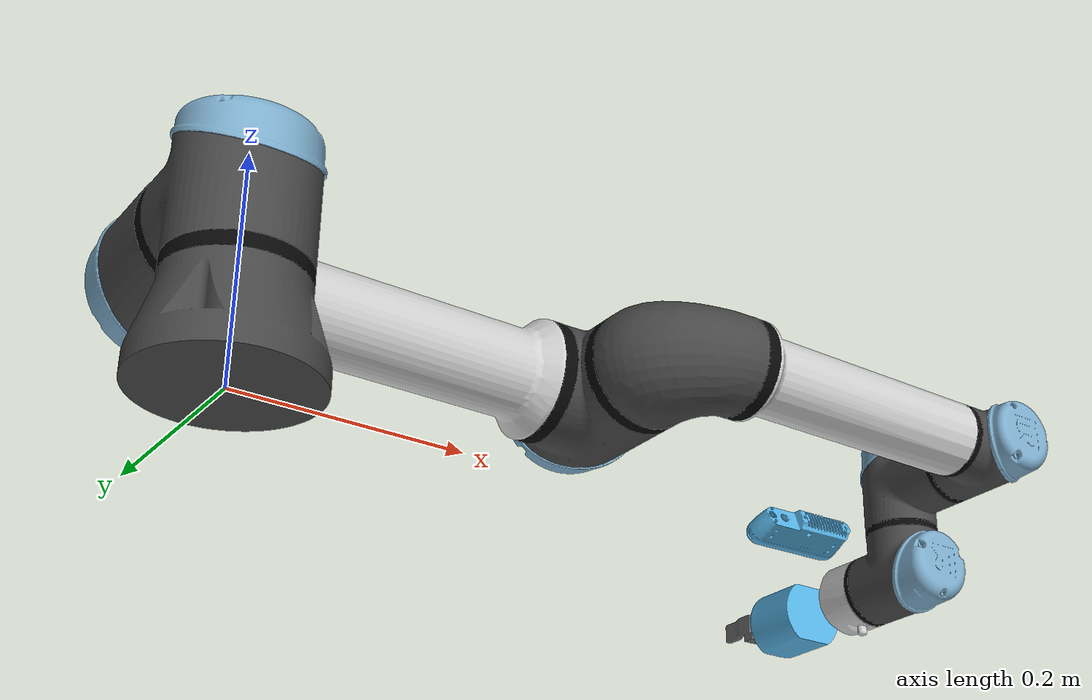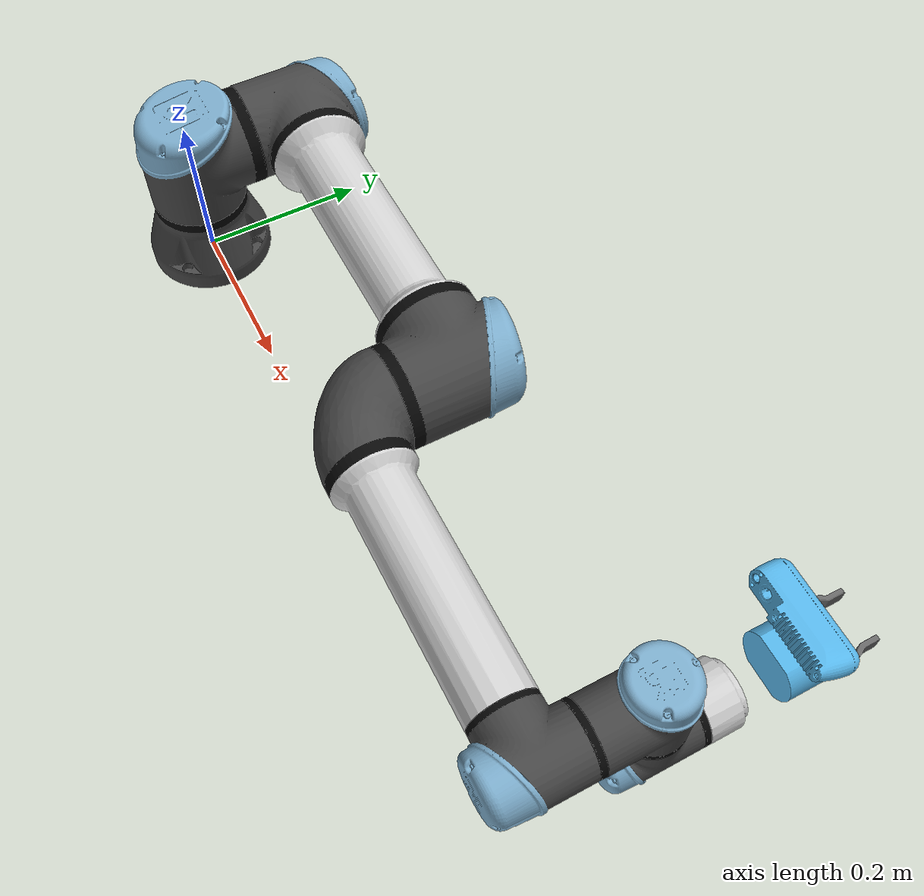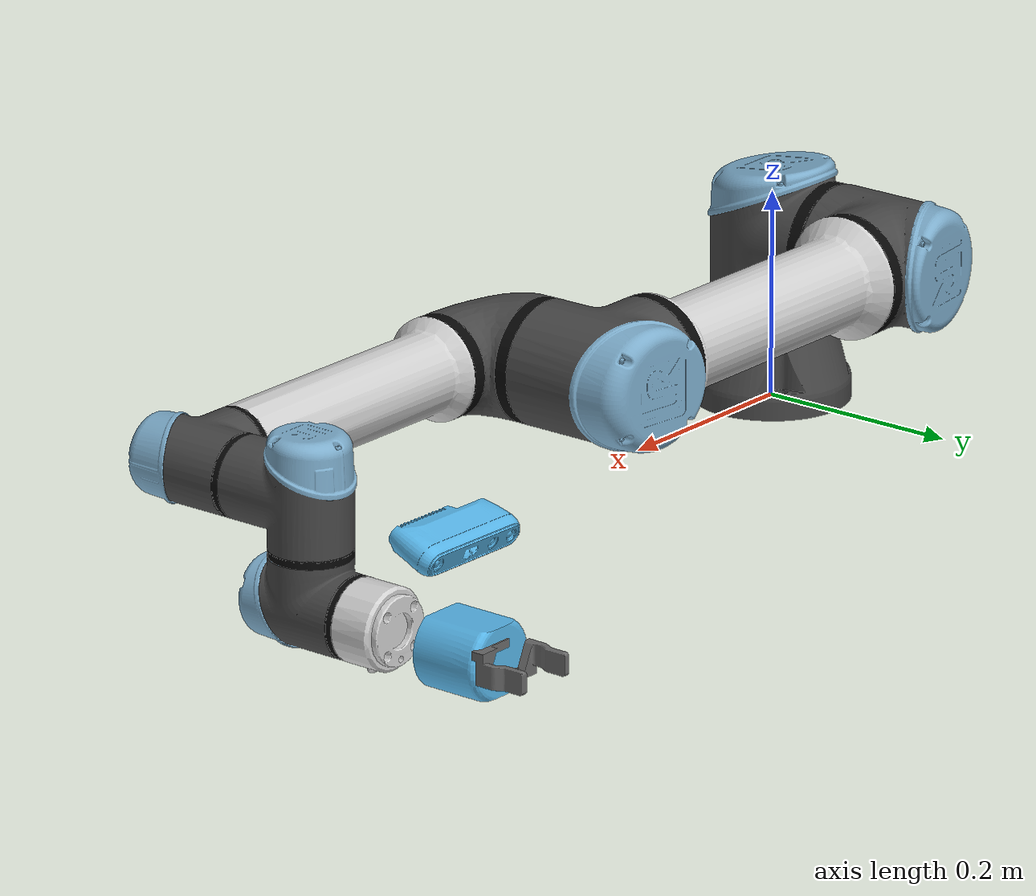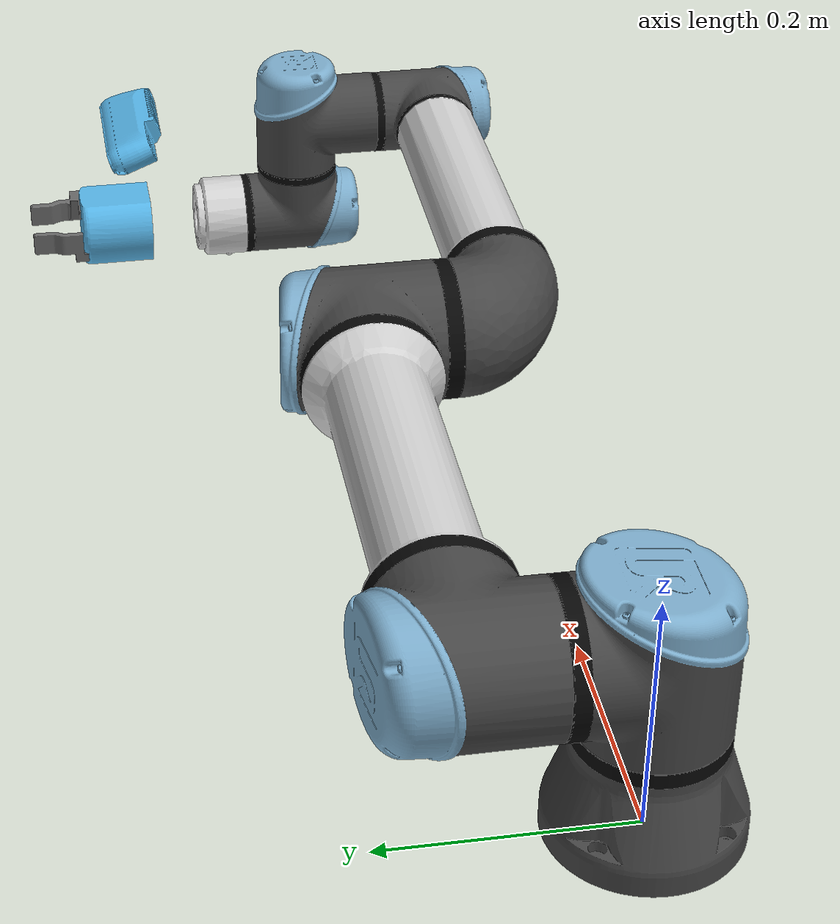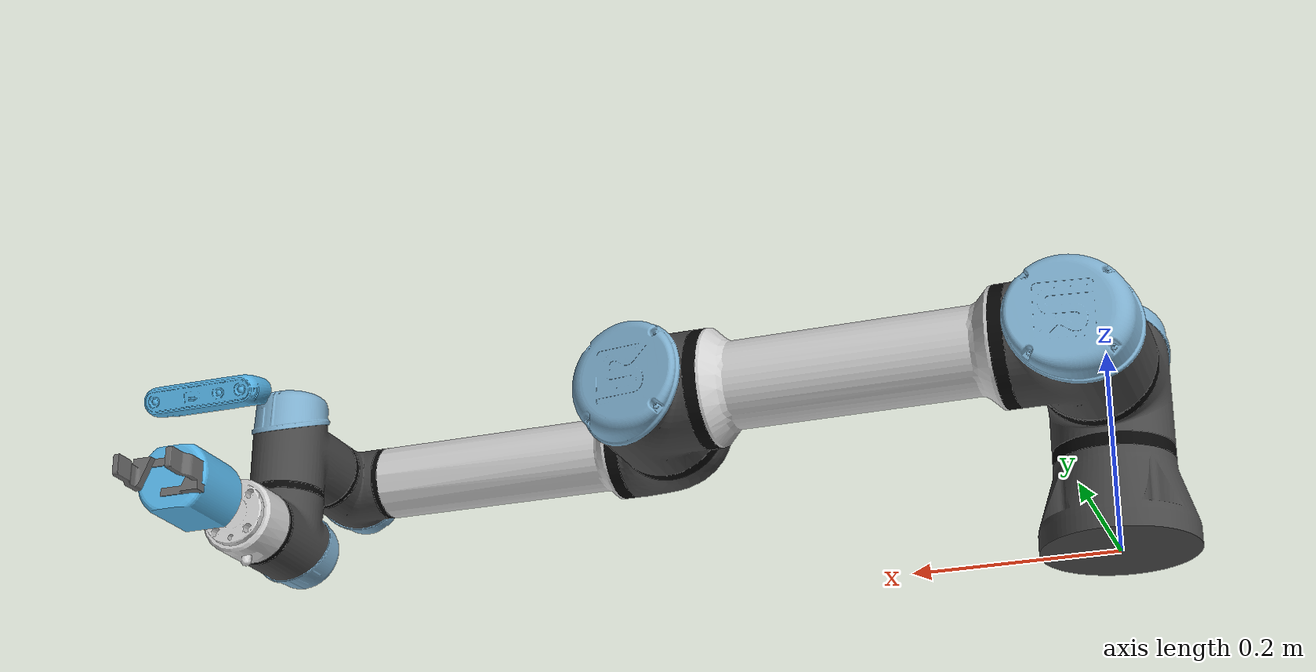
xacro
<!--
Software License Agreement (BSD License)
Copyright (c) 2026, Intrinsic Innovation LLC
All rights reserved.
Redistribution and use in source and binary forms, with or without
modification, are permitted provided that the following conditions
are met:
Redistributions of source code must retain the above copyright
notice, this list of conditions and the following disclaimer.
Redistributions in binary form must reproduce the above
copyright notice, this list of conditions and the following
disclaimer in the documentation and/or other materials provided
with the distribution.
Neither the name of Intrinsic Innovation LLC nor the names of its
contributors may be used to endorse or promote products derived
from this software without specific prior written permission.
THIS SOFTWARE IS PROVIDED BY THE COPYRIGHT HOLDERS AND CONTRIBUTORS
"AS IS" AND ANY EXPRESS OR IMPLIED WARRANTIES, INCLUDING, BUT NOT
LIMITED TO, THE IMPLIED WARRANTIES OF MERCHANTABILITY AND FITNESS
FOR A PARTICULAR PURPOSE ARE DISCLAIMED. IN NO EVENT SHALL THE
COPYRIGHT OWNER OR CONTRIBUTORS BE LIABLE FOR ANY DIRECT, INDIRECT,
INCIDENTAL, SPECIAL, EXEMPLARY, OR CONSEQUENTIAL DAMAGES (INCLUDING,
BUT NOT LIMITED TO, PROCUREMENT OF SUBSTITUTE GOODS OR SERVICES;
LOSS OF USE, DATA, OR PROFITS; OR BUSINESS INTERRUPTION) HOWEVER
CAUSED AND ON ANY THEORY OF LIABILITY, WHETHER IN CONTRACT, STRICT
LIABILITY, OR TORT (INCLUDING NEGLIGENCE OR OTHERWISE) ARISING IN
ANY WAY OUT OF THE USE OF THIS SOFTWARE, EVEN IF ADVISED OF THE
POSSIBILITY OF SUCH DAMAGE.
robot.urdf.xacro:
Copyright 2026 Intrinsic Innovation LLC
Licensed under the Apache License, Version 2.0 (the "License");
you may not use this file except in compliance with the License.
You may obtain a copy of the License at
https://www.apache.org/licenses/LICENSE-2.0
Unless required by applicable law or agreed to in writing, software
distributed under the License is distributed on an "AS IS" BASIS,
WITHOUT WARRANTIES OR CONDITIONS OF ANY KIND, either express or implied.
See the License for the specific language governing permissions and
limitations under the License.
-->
<?xml version="1.0"?>

<robot xmlns:xacro="http://www.ros.org/wiki/xacro" name="robot_hardware">
    <xacro:arg name="initial_positions_file" default="initial_positions.yaml" />

    <!-- Import robot_hardware urdf file -->
    <xacro:include filename="$(find robot_hardware_description)/urdf/robot.urdf.xacro" />

    <!-- Import control_xacro -->
    <xacro:include filename="robot_hardware.ros2_control.xacro" />

    <xacro:robot_hardware_ros2_control name="FakeSystem" initial_positions_file="$(arg initial_positions_file)"/>

</robot>

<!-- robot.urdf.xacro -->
<robot
  name="robot_hardware"
  xmlns:xacro="http://wiki.ros.org/xacro">

  <!-- Vendored Intrinsic UR5e description macro -->
  <xacro:include
    filename="$(find robot_hardware_description)/urdf/ur5e/ur5e_macro.xacro"/>

  <!-- Local hardware components -->
  <xacro:include
    filename="$(find robot_hardware_description)/urdf/robotiq_hande/robotiq_hande_macro.xacro"/>

  <xacro:include
    filename="$(find robot_hardware_description)/urdf/orbbec_gemini_335le/orbbec_gemini_335le_macro.xacro"/>

  <!-- UR5e Arm -->
  <xacro:ur5e_robot
    name="ur5e"
    tf_prefix=""
    parent="">
    <origin xyz="0 0 0" rpy="0 0 0"/>
  </xacro:ur5e_robot>

  <!-- Robotiq Hand-E, adding 1mm additional opening to grasp 50mm objects -->
  <!-- This has been reflected in third_party/robot_hardware_moveit_config/config/robot_hardware.srdf as well -->
  <xacro:robotiq_hande
    name="robotiq_hande"
    tf_prefix="hande_"
    grip_pos_min="-0.001"
    grip_pos_max="0.025"
    grip_vel_max="0.05"
    grip_effort_min="20"
    grip_effort_max="130"
    initial_pos="0.00655"
    use_ros2_control="false"/>

  <!-- Orbbec Gemini 335Le Camera -->
  <xacro:orbbec_gemini_335le
    name="orbbec_camera"
    tf_prefix="orbbec_camera_"/>

  <!-- UR5e flange -> Hand-E -->
  <joint name="flange_to_hande" type="fixed">
    <origin xyz="0 0 0" rpy="0 0 0"/>
    <parent link="flange"/>
    <child link="hande_hande_base_link"/>
  </joint>

  <!-- UR5e flange -> Camera -->
  <joint name="flange_to_orbbec_camera" type="fixed">
    <origin xyz="0.025379 0.093008 0.077824" rpy="-0.35550899 0.00730122 3.13241238"/>
    <parent link="flange"/>
    <child link="orbbec_camera_link"/>
  </joint>

</robot>

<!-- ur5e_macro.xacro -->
<robot xmlns:xacro="http://wiki.ros.org/xacro">
  <xacro:macro name="ur5e_robot" params="name tf_prefix parent *origin">

    <!-- Base link -->
    <link name="${tf_prefix}base_link">
      <visual>
        <origin rpy="0 0 3.14159265359" xyz="0 0 0"/>
        <geometry>
          <mesh filename="package://robot_hardware_description/urdf/ur5e/visual/base.dae"/>
        </geometry>
      </visual>
      <collision>
        <origin rpy="0 0 3.14159265359" xyz="0 0 0.01"/>
        <geometry>
          <mesh filename="package://robot_hardware_description/urdf/ur5e/collision/base.stl"/>
        </geometry>
      </collision>
      <inertial>
        <mass value="4.0"/>
        <origin rpy="0 0 0" xyz="0.0 0.0 0.0"/>
        <inertia ixx=".01" ixy="0" ixz="0" iyy=".01" iyz="0" izz=".01"/>
      </inertial>
    </link>

    <!-- Base joint connecting to parent link -->
    <xacro:if value="${parent != ''}">
      <joint name="${tf_prefix}base_joint" type="fixed">
        <xacro:insert_block name="origin" />
        <parent link="${parent}" />
        <child link="${tf_prefix}base_link" />
      </joint>
    </xacro:if>

    <!-- Shoulder pan joint -->
    <joint name="${tf_prefix}shoulder_pan_joint" type="revolute">
      <parent link="${tf_prefix}base_link"/>
      <child link="${tf_prefix}shoulder_link"/>
      <origin rpy="0 0 0" xyz="0 0 0.1625"/>
      <axis xyz="0 0 1"/>
      <limit effort="150.0" lower="-6.2831853" upper="6.2831853" velocity="3.1415927"/>
    </joint>

    <link name="${tf_prefix}shoulder_link">
      <visual>
        <origin rpy="0 0 0" xyz="0 0 0"/>
        <geometry>
          <mesh filename="package://robot_hardware_description/urdf/ur5e/visual/shoulder.dae"/>
        </geometry>
      </visual>
      <collision>
        <origin rpy="0 0 0" xyz="0 0 0"/>
        <geometry>
          <mesh filename="package://robot_hardware_description/urdf/ur5e/collision/shoulder.wrapped.1cm.stl"/>
        </geometry>
      </collision>
      <inertial>
        <mass value="3.761"/>
        <origin rpy="0 0 0" xyz="0.0 0.0 0.0"/>
        <inertia ixx=".01" ixy="0" ixz="0" iyy=".01" iyz="0" izz=".01"/>
      </inertial>
    </link>

    <!-- Shoulder lift joint -->
    <joint name="${tf_prefix}shoulder_lift_joint" type="revolute">
      <parent link="${tf_prefix}shoulder_link"/>
      <child link="${tf_prefix}upper_arm_link"/>
      <origin rpy="0 0 0" xyz="0 0 0"/>
      <axis xyz="0 1 0"/>
      <limit effort="150.0" lower="-4.1" upper="0.96" velocity="3.1415927"/>
    </joint>

    <link name="${tf_prefix}upper_arm_link">
      <visual>
        <origin rpy="0 1.57079632679 0" xyz="0 0.138 0"/>
        <geometry>
          <mesh filename="package://robot_hardware_description/urdf/ur5e/visual/upperarm.dae"/>
        </geometry>
      </visual>
      <collision>
        <origin rpy="0 1.57079632679 0" xyz="0 0.138 0"/>
        <geometry>
          <mesh filename="package://robot_hardware_description/urdf/ur5e/collision/upperarm.wrapped.1cm.stl"/>
        </geometry>
      </collision>
      <inertial>
        <mass value="8.058"/>
        <origin rpy="0 0 0" xyz="0.0 0.0 0.28"/>
        <inertia ixx=".01" ixy="0" ixz="0" iyy=".01" iyz="0" izz=".01"/>
      </inertial>
    </link>

    <!-- Elbow joint -->
    <joint name="${tf_prefix}elbow_joint" type="revolute">
      <parent link="${tf_prefix}upper_arm_link"/>
      <child link="${tf_prefix}forearm_link"/>
      <origin rpy="0 0 0" xyz="0.425 0 0"/>
      <axis xyz="0 1 0"/>
      <limit effort="150.0" lower="-2.8" upper="2.8" velocity="3.1415927"/>
    </joint>

    <link name="${tf_prefix}forearm_link">
      <visual>
        <origin rpy="0 1.57079632679 0" xyz="0 0.007 0"/>
        <geometry>
          <mesh filename="package://robot_hardware_description/urdf/ur5e/visual/forearm.dae"/>
        </geometry>
      </visual>
      <collision>
        <origin rpy="0 1.57079632679 0" xyz="0 0.007 0"/>
        <geometry>
          <mesh filename="package://robot_hardware_description/urdf/ur5e/collision/forearm.wrapped.1cm.stl"/>
        </geometry>
      </collision>
      <inertial>
        <mass value="2.846"/>
        <origin rpy="0 0 0" xyz="0.0 0.0 0.25"/>
        <inertia ixx=".01" ixy="0" ixz="0" iyy=".01" iyz="0" izz=".01"/>
      </inertial>
    </link>

    <!-- Wrist 1 joint -->
    <joint name="${tf_prefix}wrist_1_joint" type="revolute">
      <parent link="${tf_prefix}forearm_link"/>
      <child link="${tf_prefix}wrist_1_link"/>
      <origin rpy="0 0 0" xyz="0.3922 0 0"/>
      <axis xyz="0 1 0"/>
      <limit effort="28.0" lower="-6.2831853" upper="6.2831853" velocity="3.1415927"/>
    </joint>

    <link name="${tf_prefix}wrist_1_link">
      <visual>
        <origin rpy="0 3.14159265359 0" xyz="0 0.007 0"/>
        <geometry>
          <mesh filename="package://robot_hardware_description/urdf/ur5e/visual/wrist1.dae"/>
        </geometry>
      </visual>
      <collision>
        <origin rpy="0 3.14159265359 0" xyz="0 0.007 0"/>
        <geometry>
          <mesh filename="package://robot_hardware_description/urdf/ur5e/collision/wrist1.wrapped.1cm.stl"/>
        </geometry>
      </collision>
      <inertial>
        <mass value="1.37"/>
        <origin rpy="0 0 0" xyz="0.0 0.0 0.0"/>
        <inertia ixx=".01" ixy="0" ixz="0" iyy=".01" iyz="0" izz=".01"/>
      </inertial>
    </link>

    <!-- Wrist 2 joint -->
    <joint name="${tf_prefix}wrist_2_joint" type="revolute">
      <parent link="${tf_prefix}wrist_1_link"/>
      <child link="${tf_prefix}wrist_2_link"/>
      <origin rpy="0 0 0" xyz="0 0.1333 -0.0997"/>
      <axis xyz="0 0 -1"/>
      <limit effort="28.0" lower="-6.2831853" upper="6.2831853" velocity="3.1415927"/>
    </joint>

    <link name="${tf_prefix}wrist_2_link">
      <visual>
        <origin rpy="0 3.14159265359 0" xyz="0 0 0.0997"/>
        <geometry>
          <mesh filename="package://robot_hardware_description/urdf/ur5e/visual/wrist2.dae"/>
        </geometry>
      </visual>
      <collision>
        <origin rpy="0 3.14159265359 0" xyz="0 0 0.0997"/>
        <geometry>
          <mesh filename="package://robot_hardware_description/urdf/ur5e/collision/wrist2.wrapped.1cm.stl"/>
        </geometry>
      </collision>
      <inertial>
        <mass value="1.3"/>
        <origin rpy="0 0 0" xyz="0 0 0"/>
        <inertia ixx=".01" ixy="0" ixz="0" iyy=".01" iyz="0" izz=".01"/>
      </inertial>
    </link>

    <!-- Wrist 3 joint -->
    <joint name="${tf_prefix}wrist_3_joint" type="revolute">
      <parent link="${tf_prefix}wrist_2_link"/>
      <child link="${tf_prefix}wrist_3_link"/>
      <origin rpy="-1.57079632679 3.14159265359 0" xyz="0.0 0.0996 0"/>
      <axis xyz="0 0 1"/>
      <limit effort="28.0" lower="-6.2831853" upper="6.2831853" velocity="3.1415927"/>
    </joint>

    <link name="${tf_prefix}wrist_3_link">
      <visual>
        <origin rpy="1.57079632679 0 0" xyz="0 -0.0005 -0.0996"/>
        <geometry>
          <mesh filename="package://robot_hardware_description/urdf/ur5e/visual/wrist3.dae"/>
        </geometry>
      </visual>
      <collision>
        <origin rpy="1.57079632679 0 0" xyz="0 -0.0005 -0.0996"/>
        <geometry>
          <mesh filename="package://robot_hardware_description/urdf/ur5e/collision/wrist3.wrapped.1cm.stl"/>
        </geometry>
      </collision>
      <inertial>
        <mass value="0.365"/>
        <origin rpy="0 0 0" xyz="0.0 0.0 0.0"/>
        <inertia ixx=".01" ixy="0" ixz="0" iyy=".01" iyz="0" izz=".01"/>
      </inertial>
    </link>

    <!-- Terminal Frame Aliases (flange & tool0) -->
    <link name="${tf_prefix}flange"/>
    <joint name="${tf_prefix}wrist_3_link-flange" type="fixed">
      <parent link="${tf_prefix}wrist_3_link"/>
      <child link="${tf_prefix}flange"/>
      <origin rpy="0 0 0" xyz="0 0 0"/>
    </joint>

    <link name="${tf_prefix}tool0"/>
    <joint name="${tf_prefix}flange-tool0" type="fixed">
      <parent link="${tf_prefix}flange"/>
      <child link="${tf_prefix}tool0"/>
      <origin rpy="0 0 0" xyz="0 0 0"/>
    </joint>

  </xacro:macro>
</robot>

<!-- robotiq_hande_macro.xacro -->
<robot xmlns:xacro="http://wiki.ros.org/xacro">

  <xacro:include filename="$(find robot_hardware_description)/urdf/robotiq_hande/robotiq_hande.ros2_control.xacro"/>

  <xacro:macro name="robotiq_hande" params="name tf_prefix grip_pos_min grip_pos_max grip_vel_max grip_effort_min grip_effort_max initial_pos use_ros2_control:=false">

    <xacro:if value="${use_ros2_control}">
      <xacro:robotiq_hande_ros2_control
        name="${name}"
        tf_prefix="${tf_prefix}"
        grip_pos_min="${grip_pos_min}"
        grip_pos_max="${grip_pos_max}"
        grip_effort_min="${grip_effort_min}"
        grip_effort_max="${grip_effort_max}"
        initial_pos="${initial_pos}"
      />
    </xacro:if>

    <!-- Base of the gripper -->
    <link name="${tf_prefix}hande_base_link">
      <inertial>
        <origin xyz="0 0 0" rpy="0 0 0"/>
        <mass value="1.0"/>
        <inertia ixx="0.1" ixy="0.0" ixz="0.0"
                 iyy="0.1" iyz="0.0"
                 izz="0.1"/>
      </inertial>

      <visual name="visual1">
        <origin xyz="0 0 0" rpy="0 0 0"/>
        <geometry>
          <mesh filename="package://robot_hardware_description/meshes/robotiq_hande/robotiq_hande_body.dae"/>
        </geometry>
      </visual>

      <collision name="collision1">
        <origin xyz="0 0 0" rpy="0 0 0"/>
        <geometry>
          <mesh filename="package://robot_hardware_description/meshes/robotiq_hande/robotiq_hande_body_c01.stl"/>
        </geometry>
      </collision>

      <collision name="collision2">
        <origin xyz="0 0 0" rpy="0 0 0"/>
        <geometry>
          <mesh filename="package://robot_hardware_description/meshes/robotiq_hande/robotiq_hande_body_c02.stl"/>
        </geometry>
      </collision>
    </link>

    <!-- Fingers and their prismatic joints -->
    <link name="${tf_prefix}hande_finger_link_l">
      <inertial>
        <origin xyz="0 0 0" rpy="0 0 0"/>
        <mass value="0.2"/>
        <inertia ixx="0.0001" ixy="0.0" ixz="0.0"
                 iyy="0.00009" iyz="0.0"
                 izz="0.00003"/>
      </inertial>

      <visual name="visual1">
        <origin xyz="0 0 0" rpy="0 0 0"/>
        <geometry>
          <mesh filename="package://robot_hardware_description/meshes/robotiq_hande/robotiq_hande_finger.dae"/>
        </geometry>
      </visual>

      <collision name="collision1">
        <origin xyz="0.028 0 0.15" rpy="0 0 0"/>
        <geometry>
          <sphere radius="0.003"/>
        </geometry>
      </collision>

      <collision name="collision2">
        <origin xyz="0.033 0 0.127" rpy="0 0 0"/>
        <geometry>
          <box size="0.005 0.02 0.02"/>
        </geometry>
      </collision>
    </link>

    <link name="${tf_prefix}hande_finger_link_r">
      <inertial>
        <origin xyz="0 0 0" rpy="0 0 0"/>
        <mass value="0.2"/>
        <inertia ixx="0.0001" ixy="0.0" ixz="0.0"
                 iyy="0.00009" iyz="0.0"
                 izz="0.00003"/>
      </inertial>

      <visual name="visual1">
        <origin xyz="0 0 0" rpy="0 0 3.14157"/>
        <geometry>
          <mesh filename="package://robot_hardware_description/meshes/robotiq_hande/robotiq_hande_finger.dae"/>
        </geometry>
      </visual>

      <collision name="collision1">
        <origin xyz="-0.028 0 0.15" rpy="0 0 0"/>
        <geometry>
          <sphere radius="0.003"/>
        </geometry>
      </collision>

      <collision name="collision2">
        <origin xyz="-0.033 0 0.127" rpy="0 0 0"/>
        <geometry>
          <box size="0.005 0.02 0.02"/>
        </geometry>
      </collision>
    </link>

    <joint name="${tf_prefix}left_finger_joint" type="prismatic">
      <origin xyz="0 0 0" rpy="0 0 0"/>
      <parent link="${tf_prefix}hande_base_link"/>
      <child link="${tf_prefix}hande_finger_link_l"/>
      <axis xyz="-1 0 0"/>
      <limit effort="${grip_effort_max}" lower="${grip_pos_min}" upper="${grip_pos_max}" velocity="${grip_vel_max}"/>
    </joint>

    <joint name="${tf_prefix}right_finger_joint" type="prismatic">
      <origin xyz="0 0 0" rpy="0 0 0"/>
      <parent link="${tf_prefix}hande_base_link"/>
      <child link="${tf_prefix}hande_finger_link_r"/>
      <axis xyz="1 0 0"/>
      <limit effort="${grip_effort_max}" lower="${grip_pos_min}" upper="${grip_pos_max}" velocity="${grip_vel_max}"/>
      <mimic joint="${tf_prefix}left_finger_joint" multiplier="1" offset="0"/>
    </joint>

    <!-- Tool Center Point (TCP) and Tool Frame conventions -->
    <link name="${tf_prefix}tcp"/>

    <joint name="${tf_prefix}attach_tool_frame" type="fixed">
    <!-- NOTE(aaronchongth): decreased z-offset from 0.172 to 0.14 because of constant collisions with scene objects -->
      <origin xyz="0 0 0.14" rpy="0 0 0"/>
      <parent link="${tf_prefix}hande_base_link"/>
      <child link="${tf_prefix}tcp"/>
    </joint>

    <!-- Alias link for Intrinsic Core prefixed tool_frame convention -->
    <link name="${tf_prefix}tool_frame"/>
    <joint name="${tf_prefix}tcp_to_prefixed_tool_frame" type="fixed">
      <origin xyz="0 0 0" rpy="0 0 0"/>
      <parent link="${tf_prefix}tcp"/>
      <child link="${tf_prefix}tool_frame"/>
    </joint>

    <!-- Alias link for Intrinsic Core unqualified tool_frame convention -->
    <link name="tool_frame"/>
    <joint name="${tf_prefix}tcp_to_tool_frame" type="fixed">
      <origin xyz="0 0 0" rpy="0 0 0"/>
      <parent link="${tf_prefix}tcp"/>
      <child link="tool_frame"/>
    </joint>

    <!-- Alias link for Intrinsic Core gripper base convention -->
    <link name="gripper_base_link"/>
    <joint name="${tf_prefix}base_to_gripper_base_link" type="fixed">
      <origin xyz="0 0 0" rpy="0 0 0"/>
      <parent link="${tf_prefix}hande_base_link"/>
      <child link="gripper_base_link"/>
    </joint>

  </xacro:macro>
</robot>

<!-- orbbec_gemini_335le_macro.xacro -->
<robot xmlns:xacro="http://wiki.ros.org/xacro">

  <!--
    Orbbec Gemini 335Le Camera Macro
    Derived directly from orbbec_gemini_335le.sdf
  -->
  <xacro:macro name="orbbec_gemini_335le" params="name:=camera tf_prefix:=camera_">

    <link name="${tf_prefix}link"/>

    <link name="${tf_prefix}mesh_frame">
      <visual name="visual">
        <origin xyz="0 0 0" rpy="0 0 0"/>
        <geometry>
          <mesh filename="package://robot_hardware_description/meshes/orbbec_gemini_335le/orbbec_gemini_335le_visual.obj"/>
        </geometry>
      </visual>
    </link>

    <joint name="${tf_prefix}color_to_mesh" type="fixed">
      <origin xyz="0.02375 0.0145 -0.035" rpy="0.0 -1.57079632679 1.57079632679"/>
      <parent link="${tf_prefix}link"/>
      <child link="${tf_prefix}mesh_frame"/>
    </joint>

    <link name="${tf_prefix}mesh_centroid_frame">
      <inertial>
        <origin xyz="0 0 0" rpy="0 0 0"/>
        <mass value="0.22"/>
        <inertia ixx="0.000297" ixy="0.0" ixz="0.0"
                 iyy="0.000061" iyz="0.0"
                 izz="0.000328"/>
      </inertial>

      <collision name="collision">
        <origin xyz="0 0 0" rpy="0 0 0"/>
        <geometry>
          <box size="0.05 0.124 0.029"/>
        </geometry>
      </collision>
    </link>

    <joint name="${tf_prefix}mesh_to_centroid" type="fixed">
      <origin xyz="0.013 0.0 0.0145" rpy="0 0 0"/>
      <parent link="${tf_prefix}mesh_frame"/>
      <child link="${tf_prefix}mesh_centroid_frame"/>
    </joint>

    <!-- ================= Sensor Frames (ROS Standard) ================= -->
    <!-- Color frame -->
    <link name="${tf_prefix}color_frame"/>
    <joint name="${tf_prefix}color_joint" type="fixed">
      <origin xyz="0 0 0" rpy="0 0 0"/>
      <parent link="${tf_prefix}link"/>
      <child link="${tf_prefix}color_frame"/>
    </joint>

    <!-- Color optical frame (standard ROS camera optical convention: z forward, x right, y down) -->
    <link name="${tf_prefix}color_optical_frame"/>
    <joint name="${tf_prefix}color_optical_joint" type="fixed">
      <origin xyz="0 0 0" rpy="-1.57079632679 0.0 -1.57079632679"/>
      <parent link="${tf_prefix}color_frame"/>
      <child link="${tf_prefix}color_optical_frame"/>
    </joint>

    <!-- Depth frame -->
    <link name="${tf_prefix}depth_frame"/>
    <joint name="${tf_prefix}depth_joint" type="fixed">
      <origin xyz="0 0 0" rpy="0 0 0"/>
      <parent link="${tf_prefix}link"/>
      <child link="${tf_prefix}depth_frame"/>
    </joint>

    <!-- Depth optical frame (standard ROS camera optical convention: z forward, x right, y down) -->
    <link name="${tf_prefix}depth_optical_frame"/>
    <joint name="${tf_prefix}depth_optical_joint" type="fixed">
      <origin xyz="0 0 0" rpy="-1.57079632679 0.0 -1.57079632679"/>
      <parent link="${tf_prefix}depth_frame"/>
      <child link="${tf_prefix}depth_optical_frame"/>
    </joint>

  </xacro:macro>

</robot>
